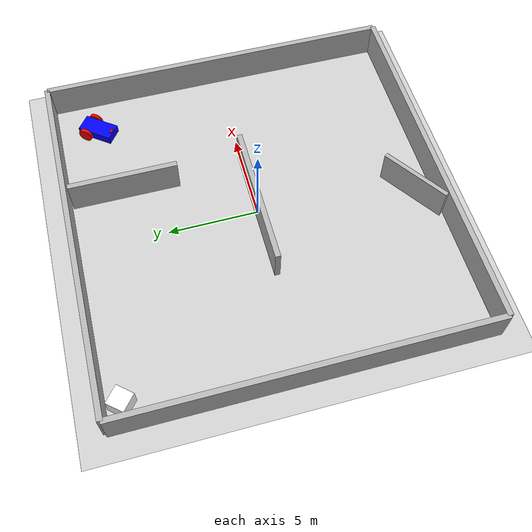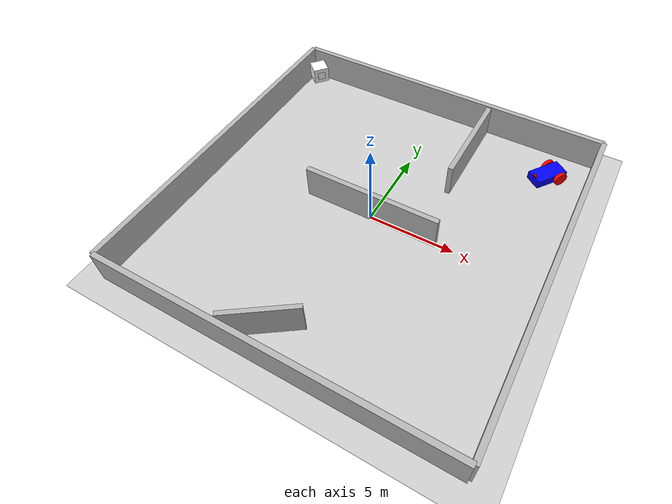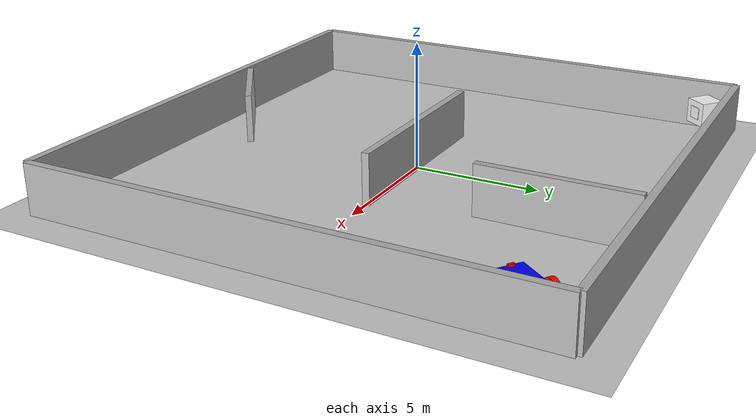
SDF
<sdf version="1.10">
 <world name="empty">
  <physics name="1ms" type="ignored">
   <max_step_size>0.001</max_step_size>
   <real_time_factor>1</real_time_factor>
   <real_time_update_rate>1000</real_time_update_rate>
  </physics>
  <plugin name="gz::sim::systems::Physics" filename="gz-sim-physics-system"/>
  <plugin name="gz::sim::systems::UserCommands" filename="gz-sim-user-commands-system"/>
  <plugin name="gz::sim::systems::SceneBroadcaster" filename="gz-sim-scene-broadcaster-system"/>
  <plugin name="gz::sim::systems::Contact" filename="gz-sim-contact-system"/>
  <plugin name="gz::sim::systems::Sensors" filename="gz-sim-sensors-system"/>
  <gravity>0 0 -9.8</gravity>
  <magnetic_field>5.56e-06 2.28e-05 -4.23e-05</magnetic_field>
  <atmosphere type="adiabatic"/>
  <scene><ambient>0.4 0.4 0.4 1</ambient><background>0.7 0.7 0.7 1</background><shadows>true</shadows></scene>
  <model name="ground_plane">
   <static>true</static>
   <link name="link">
    <collision name="collision">
     <geometry><plane><normal>0 0 1</normal><size>100 100</size></plane></geometry>
    </collision>
    <visual name="visual">
     <geometry><plane><normal>0 0 1</normal><size>100 100</size></plane></geometry>
     <material>
      <ambient>0.8 0.8 0.8 1</ambient>
      <diffuse>0.8 0.8 0.8 1</diffuse>
      <specular>0.8 0.8 0.8 1</specular>
     </material>
    </visual>
   </link>
  </model>
  <model name="wall_north">
   <static>true</static>
   <pose>0 10 1 0 0 0</pose>
   <link name="link">
    <visual name="visual">
     <geometry><box><size>20 0.3 2</size></box></geometry>
     <material>
      <ambient>0.7 0.7 0.7 1</ambient>
      <diffuse>0.7 0.7 0.7 1</diffuse>
      <specular>0.1 0.1 0.1 1</specular>
     </material>
    </visual>
    <collision name="collision"><geometry><box><size>20 0.3 2</size></box></geometry></collision>
   </link>
  </model>
  <model name="wall_south">
   <static>true</static>
   <pose>0 -10 1 0 0 0</pose>
   <link name="link">
    <visual name="visual">
     <geometry><box><size>20 0.3 2</size></box></geometry>
     <material>
      <ambient>0.7 0.7 0.7 1</ambient>
      <diffuse>0.7 0.7 0.7 1</diffuse>
      <specular>0.1 0.1 0.1 1</specular>
     </material>
    </visual>
    <collision name="collision"><geometry><box><size>20 0.3 2</size></box></geometry></collision>
   </link>
  </model>
  <model name="wall_east">
   <static>true</static>
   <pose>10 0 1 0 0 0</pose>
   <link name="link">
    <visual name="visual">
     <geometry><box><size>0.3 20 2</size></box></geometry>
     <material>
      <ambient>0.7 0.7 0.7 1</ambient>
      <diffuse>0.7 0.7 0.7 1</diffuse>
      <specular>0.1 0.1 0.1 1</specular>
     </material>
    </visual>
    <collision name="collision"><geometry><box><size>0.3 20 2</size></box></geometry></collision>
   </link>
  </model>
  <model name="wall_west">
   <static>true</static>
   <pose>-10 0 1 0 0 0</pose>
   <link name="link">
    <visual name="visual">
     <geometry><box><size>0.3 20 2</size></box></geometry>
     <material>
      <ambient>0.7 0.7 0.7 1</ambient>
      <diffuse>0.7 0.7 0.7 1</diffuse>
      <specular>0.1 0.1 0.1 1</specular>
     </material>
    </visual>
    <collision name="collision"><geometry><box><size>0.3 20 2</size></box></geometry></collision>
   </link>
  </model>
  <model name="inner_wall_1">
   <static>true</static>
   <pose>0 0 1 0 0 0</pose>
   <link name="link">
    <visual name="visual">
     <geometry><box><size>8 0.3 2</size></box></geometry>
     <material>
      <ambient>0.7 0.7 0.7 1</ambient>
      <diffuse>0.7 0.7 0.7 1</diffuse>
      <specular>0.1 0.1 0.1 1</specular>
     </material>
    </visual>
    <collision name="collision"><geometry><box><size>8 0.3 2</size></box></geometry></collision>
   </link>
  </model>
  <model name="inner_wall_2">
   <static>true</static>
   <pose>3 6.76747 1 0 0 0</pose>
   <link name="link">
    <visual name="visual">
     <geometry><box><size>0.3 6 2</size></box></geometry>
     <material>
      <ambient>0.7 0.7 0.7 1</ambient>
      <diffuse>0.7 0.7 0.7 1</diffuse>
      <specular>0.1 0.1 0.1 1</specular>
     </material>
    </visual>
    <collision name="collision"><geometry><box><size>0.3 6 2</size></box></geometry></collision>
   </link>
  </model>
  <model name="inner_wall_3">
   <static>true</static>
   <pose>-1.0469 -8.58647 1 0 0 0.6</pose>
   <link name="link">
    <visual name="visual">
     <geometry><box><size>4 0.25 2</size></box></geometry>
     <material>
      <ambient>0.7 0.7 0.7 1</ambient>
      <diffuse>0.7 0.7 0.7 1</diffuse>
      <specular>0.1 0.1 0.1 1</specular>
     </material>
    </visual>
    <collision name="collision"><geometry><box><size>4 0.25 2</size></box></geometry></collision>
   </link>
  </model>
  <model name="aruco_box">
   <pose>-9.0 9.0 1.0 0 0 -0.70</pose>
   <link name="box_link">
    <inertial>
     <mass>10.0</mass>
     <inertia><ixx>1.66</ixx><ixy>0</ixy><ixz>0</ixz><iyy>1.66</iyy><iyz>0</iyz><izz>1.66</izz></inertia>
    </inertial>
    <visual name="visual">
     <geometry><box><size>1.0 1.0 1.0</size></box></geometry>
     <material><ambient>1 1 1 1</ambient><diffuse>1 1 1 1</diffuse></material>
    </visual>
    <collision name="collision"><geometry><box><size>1.0 1.0 1.0</size></box></geometry></collision>
   </link>
   <include>
    <uri>model://aruco_marker_0</uri>
    <name>marker_0</name>
    <pose>0.51 0 0 3.14159 1.5707 0</pose>
   </include>
   <joint name="joint_0" type="fixed"><parent>box_link</parent><child>marker_0::link</child></joint>
  </model>
  <light name="sun" type="directional">
   <pose>0 0 10 0 0 0</pose>
   <direction>-0.5 0.1 -0.9</direction>
   <diffuse>0.8 0.8 0.8 1</diffuse>
   <specular>0.2 0.2 0.2 1</specular>
  </light>
  <model name="blueCar">
   <pose relative_to="world">8 8 0 0 0 180</pose>
   <link name="chassis">
    <pose relative_to="__model__">0.5 0 0.4 0 0 0</pose>
    <inertial>
     <mass>1.14395</mass>
     <inertia>
      <ixx>0.095329</ixx>
      <ixy>0</ixy>
      <ixz>0</ixz>
      <iyy>0.381317</iyy>
      <iyz>0</iyz>
      <izz>0.476646</izz>
     </inertia>
    </inertial>
    <visual name="visual">
     <geometry><box><size>2.0 1.0 0.5</size></box></geometry>
     <material>
      <ambient>0.0 0.0 1.0 1</ambient>
      <diffuse>0.0 0.0 1.0 1</diffuse>
      <specular>0.0 0.0 1.0 1</specular>
     </material>
    </visual>
    <collision name="collision"><geometry><box><size>2.0 1.0 0.5</size></box></geometry></collision>
    <sensor name="imu_sensor" type="imu">
     <always_on>1</always_on>
     <update_rate>100</update_rate>
     <visualize>true</visualize>
     <topic>imu</topic>
    </sensor>
    <sensor name="gpu_lidar" type="gpu_lidar">
     <pose relative_to="lidar_frame">0 0 0 0 0 0</pose>
     <topic>lidar</topic>
     <update_rate>10</update_rate>
     <ray>
      <scan>
       <horizontal>
        <samples>640</samples>
        <resolution>1</resolution>
        <min_angle>-1.396263</min_angle>
        <max_angle>1.396263</max_angle>
       </horizontal>
       <vertical>
        <samples>1</samples>
        <resolution>0.01</resolution>
        <min_angle>0</min_angle>
        <max_angle>0</max_angle>
       </vertical>
      </scan>
      <range><min>0.08</min><max>10.0</max><resolution>0.01</resolution></range>
     </ray>
     <always_on>1</always_on>
     <visualize>true</visualize>
    </sensor>
   </link>
   <link name="left_wheel">
    <pose relative_to="chassis">-0.5 0.6 0 -1.5707 0 0</pose>
    <inertial>
     <mass>1</mass>
     <inertia><ixx>0.043333</ixx><ixy>0</ixy><ixz>0</ixz><iyy>0.043333</iyy><iyz>0</iyz><izz>0.08</izz></inertia>
    </inertial>
    <visual name="visual">
     <geometry><cylinder><radius>0.4</radius><length>0.2</length></cylinder></geometry>
     <material>
      <ambient>1.0 0.0 0.0 1</ambient>
      <diffuse>1.0 0.0 0.0 1</diffuse>
      <specular>1.0 0.0 0.0 1</specular>
     </material>
    </visual>
    <collision name="collision">
     <geometry><cylinder><radius>0.4</radius><length>0.2</length></cylinder></geometry>
    </collision>
   </link>
   <link name="right_wheel">
    <pose relative_to="chassis">-0.5 -0.6 0 -1.5707 0 0</pose>
    <inertial>
     <mass>1</mass>
     <inertia><ixx>0.043333</ixx><ixy>0</ixy><ixz>0</ixz><iyy>0.043333</iyy><iyz>0</iyz><izz>0.08</izz></inertia>
    </inertial>
    <visual name="visual">
     <geometry><cylinder><radius>0.4</radius><length>0.2</length></cylinder></geometry>
     <material>
      <ambient>1.0 0.0 0.0 1</ambient>
      <diffuse>1.0 0.0 0.0 1</diffuse>
      <specular>1.0 0.0 0.0 1</specular>
     </material>
    </visual>
    <collision name="collision">
     <geometry><cylinder><radius>0.4</radius><length>0.2</length></cylinder></geometry>
    </collision>
   </link>
   <link name="caster">
    <pose relative_to="caster_frame"/>
    <inertial>
     <mass>1</mass>
     <inertia><ixx>0.016</ixx><ixy>0</ixy><ixz>0</ixz><iyy>0.016</iyy><iyz>0</iyz><izz>0.016</izz></inertia>
    </inertial>
    <visual name="visual">
     <geometry><sphere><radius>0.2</radius></sphere></geometry>
     <material>
      <ambient>1.0 0 0.0 1</ambient>
      <diffuse>1.0 0 0.0 1</diffuse>
      <specular>1.0 0 0.0 1</specular>
     </material>
    </visual>
    <collision name="collision"><geometry><sphere><radius>0.2</radius></sphere></geometry></collision>
   </link>
   <link name="cameraMIA">
    <pose relative_to="camera_frame">0 0 0 0 0 0</pose>
    <inertial>
     <mass>0.1</mass>
     <inertia><ixx>0.0001</ixx><ixy>0</ixy><ixz>0</ixz><iyy>0.0001</iyy><iyz>0</iyz><izz>0.0001</izz></inertia>
    </inertial>
    <visual name="visual">
     <geometry><box><size>0.1 0.25 0.1</size></box></geometry>
     <material><ambient>1 0 0.0 1</ambient><diffuse>1 0 0.0 1</diffuse><specular>1.0 0.0 1</specular></material>
    </visual>
    <collision name="collision"><geometry><box><size>0.1 0.25 0.1</size></box></geometry></collision>
    <sensor type="camera" name="camera_sensor">
     <camera>
      <horizontal_fov>1.047</horizontal_fov>
      <image><width>320</width><height>240</height></image>
      <clip><near>0.1</near><far>100</far></clip>
      <camera_info_topic>camera/camera_info</camera_info_topic>
     </camera>
     <always_on>1</always_on>
     <update_rate>30</update_rate>
     <visualize>true</visualize>
     <topic>camera/image</topic>
    </sensor>
   </link>
   <frame name="caster_frame" attached_to="chassis"><pose>0.8 0 -0.2 0 0 0</pose></frame>
   <frame name="camera_frame" attached_to="chassis"><pose>0.9 0 0.30 0 0 0</pose></frame>
   <joint name="left_wheel_joint" type="revolute">
    <pose relative_to="left_wheel"/>
    <parent>chassis</parent>
    <child>left_wheel</child>
    <axis>
     <xyz expressed_in="__model__">0 1 0</xyz>
     <limit><lower>-1.79769e+308</lower><upper>1.79769e+308</upper></limit>
    </axis>
   </joint>
   <joint name="right_wheel_joint" type="revolute">
    <pose relative_to="right_wheel"/>
    <parent>chassis</parent>
    <child>right_wheel</child>
    <axis>
     <xyz expressed_in="__model__">0 1 0</xyz>
     <limit><lower>-1.79769e+308</lower><upper>1.79769e+308</upper></limit>
    </axis>
   </joint>
   <joint name="caster_wheel" type="ball"><parent>chassis</parent><child>caster</child></joint>
   <joint name="camera_joint" type="revolute">
    <pose relative_to="camera_frame">0 0 0 0 0 0</pose>
    <parent>chassis</parent>
    <child>cameraMIA</child>
    <axis><xyz expressed_in="__model__">0 0 1</xyz><limit><lower>0.0</lower><upper>0.0</upper></limit></axis>
   </joint>
   <plugin filename="gz-sim-diff-drive-system" name="gz::sim::systems::DiffDrive">
    <left_joint>left_wheel_joint</left_joint>
    <right_joint>right_wheel_joint</right_joint>
    <wheel_separation>1.2</wheel_separation>
    <wheel_radius>0.4</wheel_radius>
    <odom_publish_frequency>1</odom_publish_frequency>
    <topic>cmd_vel</topic>
   </plugin>
   <plugin filename="gz-sim-joint-state-publisher-system" name="gz::sim::systems::JointStatePublisher"/>
   <plugin filename="gz-sim-pose-publisher-system" name="gz::sim::systems::PosePublisher">
    <publish_link_pose>true</publish_link_pose>
    <publish_sensor_pose>true</publish_sensor_pose>
    <publish_collision_pose>false</publish_collision_pose>
    <publish_visual_pose>false</publish_visual_pose>
    <publish_nested_model_pose>true</publish_nested_model_pose>
    <use_pose_vector_msg>true</use_pose_vector_msg>
    <static_publisher>true</static_publisher>
    <static_update_frequency>10</static_update_frequency>
   </plugin>
  </model>
 </world>
</sdf>

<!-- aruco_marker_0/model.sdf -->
<sdf version="1.6">
  <model name="aruco_marker_0">
    <static>true</static>
    <link name="link">
      <visual name="visual">
        <geometry>
          <box>
            <size>0.5 0.5 0.02</size> </box>
        </geometry>
        <material>
          <diffuse>1.0 1.0 1.0 1.0</diffuse> <pbr>
            <metal>
              <albedo_map>../textures/marker_0.png</albedo_map>
            </metal>
          </pbr>
        </material>
      </visual>
      <collision name="collision">
        <geometry>
          <box>
            <size>0.5 0.5 0.02</size>
          </box>
        </geometry>
      </collision>
    </link>
  </model>
</sdf>
